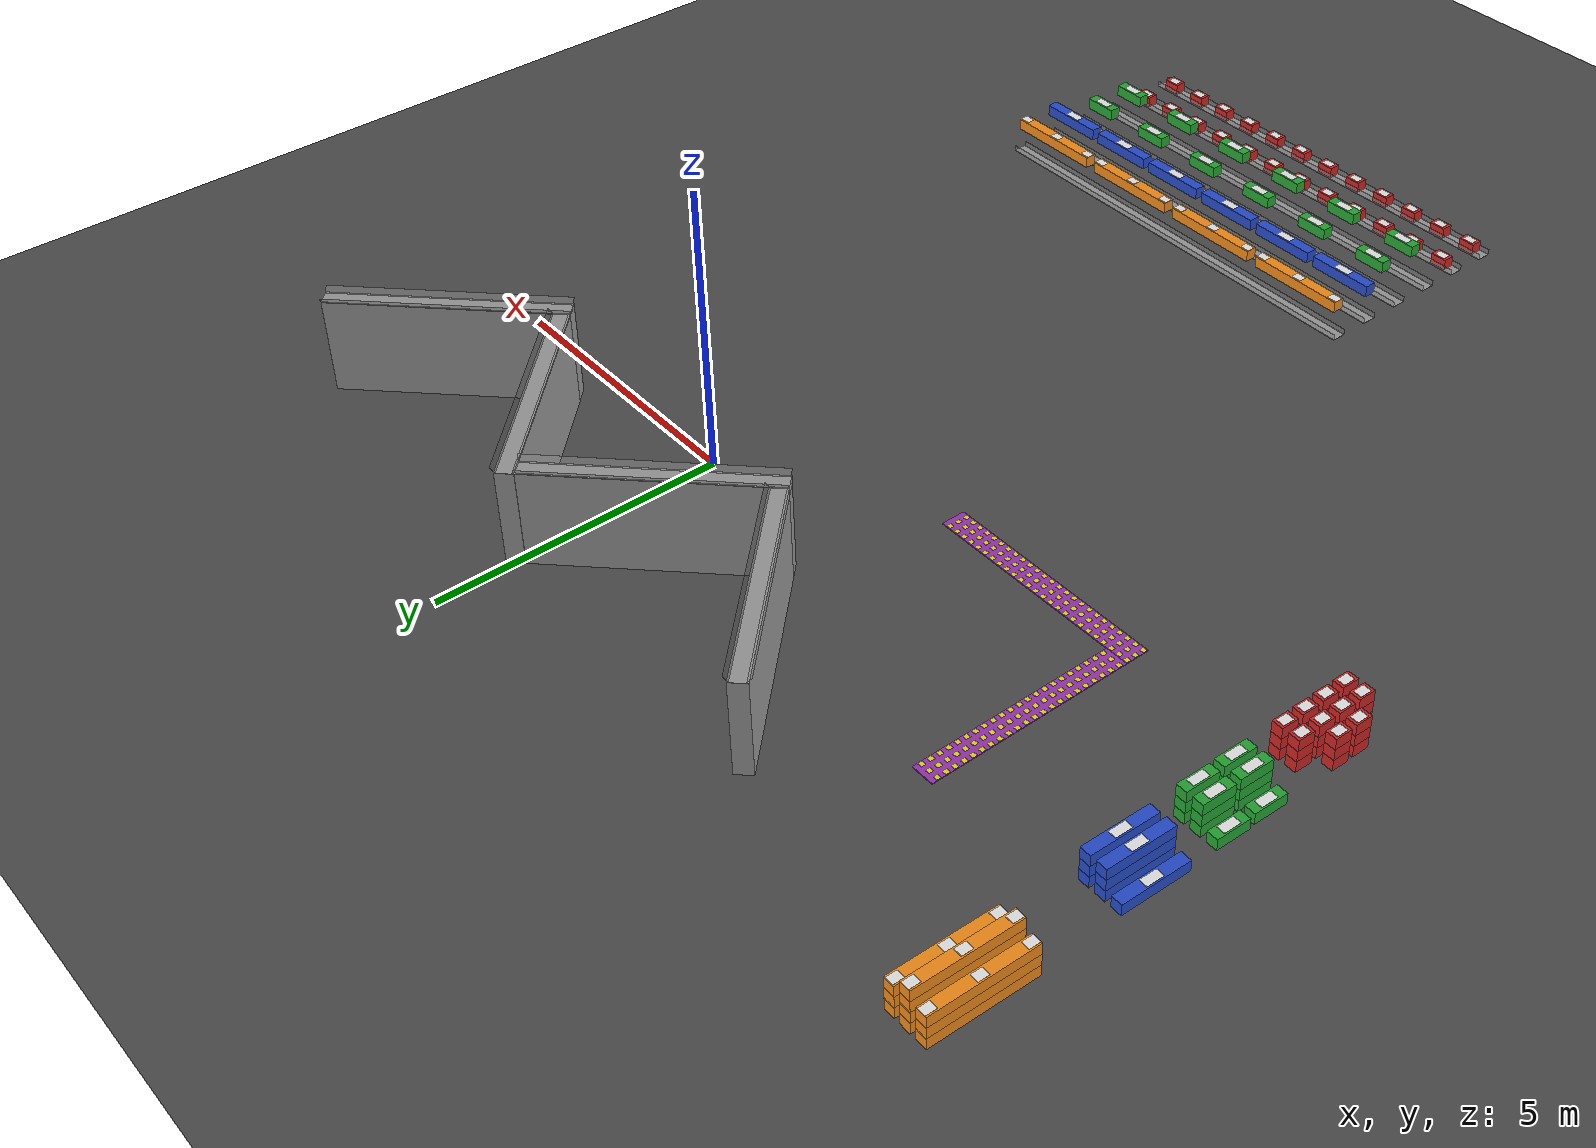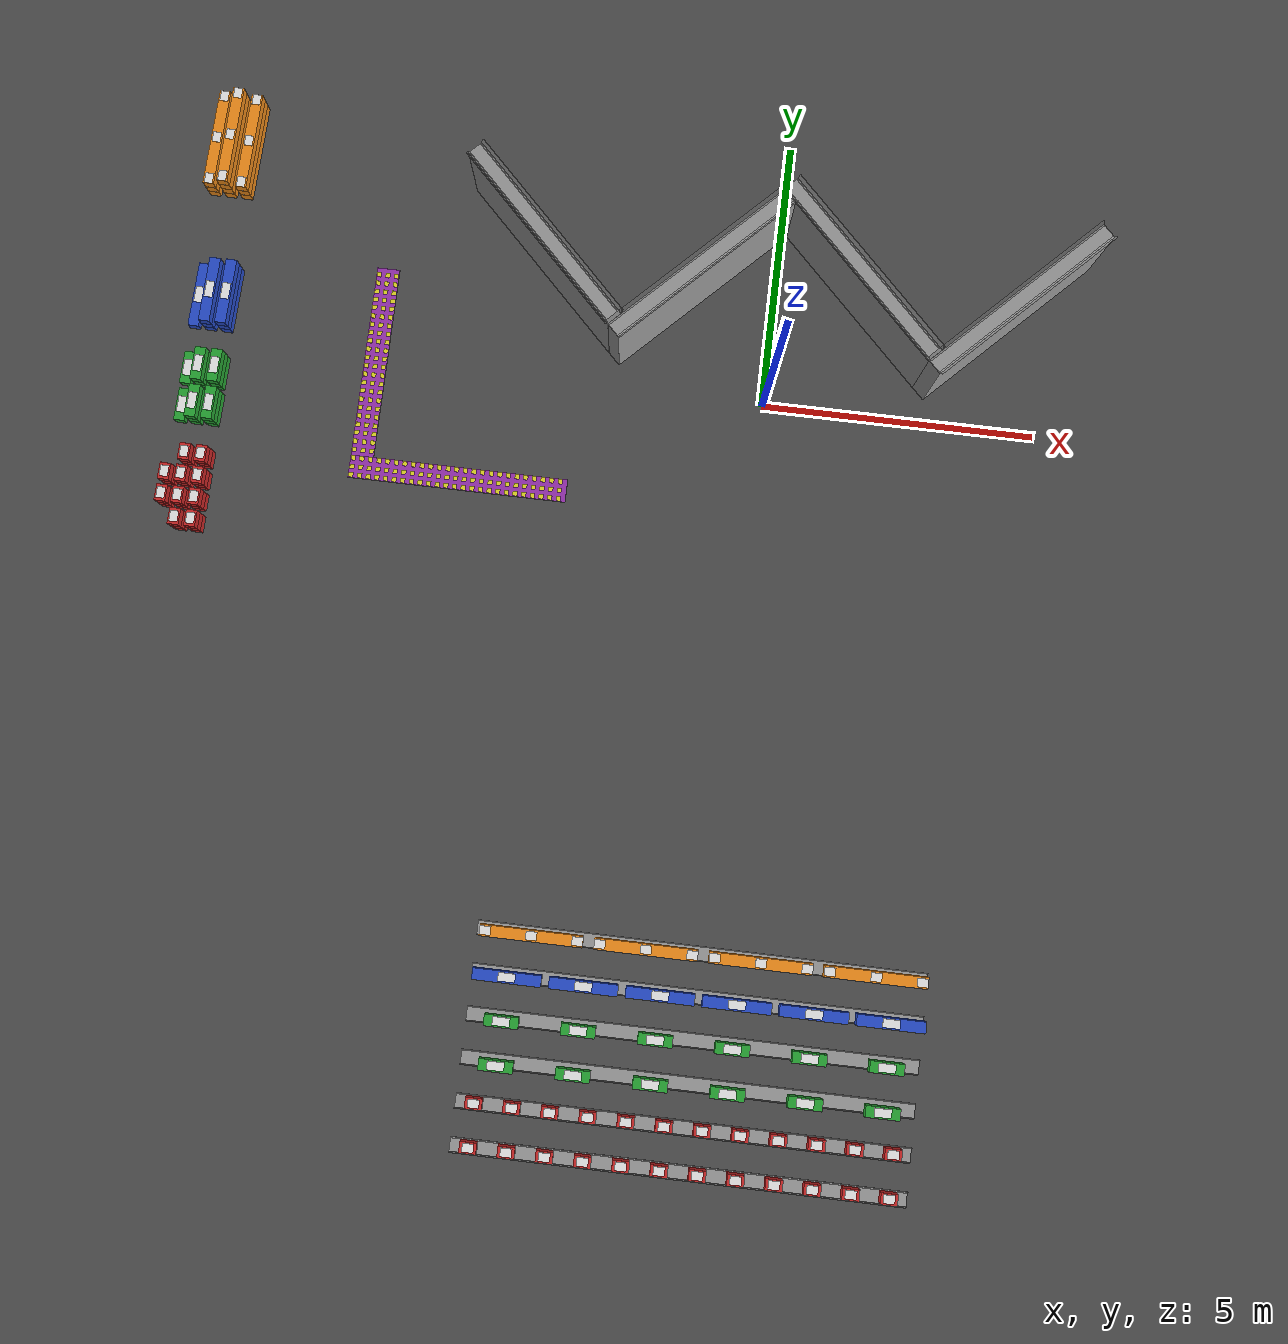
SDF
<?xml version="1.0" ?>
<?xml-model href="http://sdformat.org/schemas/root.xsd" schematypens="http://www.w3.org/2001/XMLSchema"?>
<sdf version="1.5">
  <world name="default">

    <plugin name="mrs_gazebo_static_transform_republisher_plugin" filename="libMRSGazeboStaticTransformRepublisher.so"/>
	<plugin name="mrs_gazebo_link_attacher_plugin" filename="libMRSGazeboLinkAttacherPlugin.so"/>

    <plugin name="mrs_gazebo_rviz_camera_synchronizer" filename="libMRSGazeboRvizCameraSynchronizer.so" >
      <target_frame_id>gazebo_user_camera</target_frame_id>
      <world_origin_frame_id>uav1/gps_origin</world_origin_frame_id>
      <frame_to_follow>uav1::base_link</frame_to_follow>
    </plugin>

    <spherical_coordinates>
      <surface_model>EARTH_WGS84</surface_model>
      <latitude_deg>47.397743</latitude_deg>
      <longitude_deg>8.545594</longitude_deg>
      <elevation>0.0</elevation>
      <heading_deg>0</heading_deg>
    </spherical_coordinates>

    <physics name="default_physics" default="0" type="ode">
      <gravity>0 0 -9.8066</gravity>
      <ode>
        <solver>
          <type>quick</type>
          <iters>50</iters>
          <sor>1.0</sor>
          <use_dynamic_moi_rescaling>0</use_dynamic_moi_rescaling>
        </solver>
        <constraints>
          <cfm>0</cfm>
          <erp>0.2</erp>
          <contact_max_correcting_vel>1000</contact_max_correcting_vel>
          <contact_surface_layer>0.001</contact_surface_layer>
        </constraints>
      </ode>
      <max_step_size>0.004</max_step_size>
      <real_time_factor>1</real_time_factor>
      <real_time_update_rate>250</real_time_update_rate>
      <magnetic_field>6.0e-06 2.3e-05 -4.2e-05</magnetic_field>
    </physics>

    <scene>
      <shadows>false</shadows>
      <sky>
        <clouds/>
      </sky>
    </scene>

    <light type="directional" name="sun">
      <cast_shadows>true</cast_shadows>
      <pose>250 250 600 0 0 0</pose>
      <diffuse>0.8 0.8 0.8 1</diffuse>
      <specular>0.2 0.2 0.2 1</specular>
      <attenuation>
        <range>1000</range>
        <constant>0.9</constant>
        <linear>0.01</linear>
        <quadratic>0.001</quadratic>
      </attenuation>
      <direction>0 0 -1</direction>
    </light>

    <model name="ground_plane">
      <static>true</static>
      <link name="link">
        <collision name="collision">
          <pose>0 0 0 0 0 0</pose>
          <geometry>
            <plane>
              <normal>0 0 1</normal>
              <size>250 250</size>
            </plane>
          </geometry>
          <surface>
            <bounce/>
            <friction>
              <ode>
                <mu>Inf</mu>
                <mu2>1</mu2>
              </ode>
            </friction>
          </surface>
        </collision>
        <visual name="grass">
          <pose>0 0 0 0 0 0</pose>
          <cast_shadows>false</cast_shadows>
          <geometry>
            <plane>
              <normal>0 0 1</normal>
              <size>50 60</size>
            </plane>
          </geometry>
          <material>
            <script>
              <uri>model://asphalt_plane/materials/scripts</uri>
              <uri>model://asphalt_plane/materials/textures</uri>
              <name>vrc/asphalt</name>
            </script>
          </material>
        </visual>
      </link>
    </model>

    <include>
        <name>uav_assembly_wall_1</name>
        <pose>-1.41 2.0 0 0 0 0.785</pose>
        <static>true</static>
        <uri>model://mbzirc_uav_assembly_wall</uri>
    </include>

    <include>
        <name>uav_assembly_wall_2</name>
        <pose>1.41 2.2121 0 0 0 -0.785</pose>
        <static>true</static>
        <uri>model://mbzirc_uav_assembly_wall</uri>
    </include>

    <include>
        <name>uav_assembly_wall_3</name>
        <pose>4.242640687 2.0 0 0 0 0.785</pose>
        <static>true</static>
        <uri>model://mbzirc_uav_assembly_wall</uri>
    </include>

    <include>
        <name>uav_assembly_wall_4</name>
        <pose>-4.242640687 2.2121 0 0 0 -0.785</pose>
        <static>true</static>
        <uri>model://mbzirc_uav_assembly_wall</uri>
    </include>

    <include>
        <name>ugv_assembly_wall_1</name>
        <pose>-5.41 -2.0 0 0 0 0.0</pose>
        <static>true</static>
        <uri>model://ugv_pattern</uri>
    </include>

      <include>
        <name>uav_pickup_u_channel_1</name>
        <static>true</static>
        <uri>model://mbzirc_uav_pickup_u_channel</uri>
        <pose>0 -10.0 0 0 0 0</pose>
      </include>

      <include>
        <name>orange_cube_1</name>
        <static>false</static>
        <uri>model://mbzirc_orange_brick</uri>
        <pose>-3.0 -10 0.5 0 0 0</pose>
      </include>

      <include>
        <name>orange_cube_2</name>
        <static>false</static>
        <uri>model://mbzirc_orange_brick</uri>
        <pose>-1.0 -10 0.5 0 0 0</pose>
      </include>

      <include>
        <name>orange_cube_3</name>
        <static>false</static>
        <uri>model://mbzirc_orange_brick</uri>
        <pose>1.0 -10 0.5 0 0 0</pose>
      </include>

      <include>
        <name>orange_cube_4</name>
        <static>false</static>
        <uri>model://mbzirc_orange_brick</uri>
        <pose>3.0 -10 0.5 0 0 0</pose>
      </include>

      <include>
        <name>uav_pickup_u_channel_2</name>
        <static>true</static>
        <uri>model://mbzirc_uav_pickup_u_channel</uri>
        <pose>0 -10.75 0 0 0 0</pose>
      </include>

      <include>
        <name>blue_cube_1</name>
        <static>false</static>
        <uri>model://mbzirc_blue_brick</uri>
        <pose>-3.3333 -10.75 0.5 0 0 0</pose>
      </include>

      <include>
        <name>blue_cube_2</name>
        <static>false</static>
        <uri>model://mbzirc_blue_brick</uri>
        <pose>-1.9999 -10.75 0.5 0 0 0</pose>
      </include>

      <include>
        <name>blue_cube_3</name>
        <static>false</static>
        <uri>model://mbzirc_blue_brick</uri>
        <pose>-0.6666 -10.75 0.5 0 0 0</pose>
      </include>

      <include>
        <name>blue_cube_4</name>
        <static>false</static>
        <uri>model://mbzirc_blue_brick</uri>
        <pose>0.666 -10.75 0.5 0 0 0</pose>
      </include>

      <include>
        <name>blue_cube_5</name>
        <static>false</static>
        <uri>model://mbzirc_blue_brick</uri>
        <pose>1.9999 -10.75 0.5 0 0 0</pose>
      </include>

      <include>
        <name>blue_cube_6</name>
        <static>false</static>
        <uri>model://mbzirc_blue_brick</uri>
        <pose>3.3333 -10.75 0.5 0 0 0</pose>
      </include>

      <include>
        <name>uav_pickup_u_channel_3</name>
        <static>true</static>
        <uri>model://mbzirc_uav_pickup_u_channel</uri>
        <pose>0 -11.50 0 0 0 0</pose>
      </include>

      <include>
        <name>green_cube_1</name>
        <static>false</static>
        <uri>model://mbzirc_green_brick</uri>
        <pose>-3.3333 -11.5 0.5 0 0 0</pose>
      </include>

      <include>
        <name>green_cube_2</name>
        <static>false</static>
        <uri>model://mbzirc_green_brick</uri>
        <pose>-2.0000 -11.5 0.5 0 0 0</pose>
      </include>

      <include>
        <name>green_cube_3</name>
        <static>false</static>
        <uri>model://mbzirc_green_brick</uri>
        <pose>-0.6666 -11.5 0.5 0 0 0</pose>
      </include>

      <include>
        <name>green_cube_4</name>
        <static>false</static>
        <uri>model://mbzirc_green_brick</uri>
        <pose>0.6666 -11.5 0.5 0 0 0</pose>
      </include>

      <include>
        <name>green_cube_5</name>
        <static>false</static>
        <uri>model://mbzirc_green_brick</uri>
        <pose>2.0000 -11.5 0.5 0 0 0</pose>
      </include>

      <include>
        <name>green_cube_6</name>
        <static>false</static>
        <uri>model://mbzirc_green_brick</uri>
        <pose>3.3333 -11.5 0.5 0 0 0</pose>
      </include>

      <include>
        <name>uav_pickup_u_channel_4</name>
        <static>true</static>
        <uri>model://mbzirc_uav_pickup_u_channel</uri>
        <pose>0 -12.25 0 0 0 0</pose>
      </include>

      <include>
        <name>green_cube_7</name>
        <static>false</static>
        <uri>model://mbzirc_green_brick</uri>
        <pose>-3.3333 -12.25 0.5 0 0 0</pose>
      </include>

      <include>
        <name>green_cube_8</name>
        <static>false</static>
        <uri>model://mbzirc_green_brick</uri>
        <pose>-2.0000 -12.25 0.5 0 0 0</pose>
      </include>

      <include>
        <name>green_cube_9</name>
        <static>false</static>
        <uri>model://mbzirc_green_brick</uri>
        <pose>-0.6666 -12.25 0.5 0 0 0</pose>
      </include>

      <include>
        <name>green_cube_10</name>
        <static>false</static>
        <uri>model://mbzirc_green_brick</uri>
        <pose>0.6666 -12.25 0.5 0 0 0</pose>
      </include>

      <include>
        <name>green_cube_11</name>
        <static>false</static>
        <uri>model://mbzirc_green_brick</uri>
        <pose>2.0000 -12.25 0.5 0 0 0</pose>
      </include>

      <include>
        <name>green_cube_12</name>
        <static>false</static>
        <uri>model://mbzirc_green_brick</uri>
        <pose>3.3333 -12.25 0.5 0 0 0</pose>
      </include>

      <include>
        <name>uav_pickup_u_channel_5</name>
        <static>true</static>
        <uri>model://mbzirc_uav_pickup_u_channel</uri>
        <pose>0 -13.0 0 0 0 0</pose>
      </include>

      <include>
        <name>red_cube_1</name>
        <static>false</static>
        <uri>model://mbzirc_red_brick</uri>
        <pose>-3.6666 -13 0 0 0 0</pose>
      </include>

      <include>
        <name>red_cube_2</name>
        <static>false</static>
        <uri>model://mbzirc_red_brick</uri>
        <pose>-2.9999 -13 0 0 0 0</pose>
      </include>

      <include>
        <name>red_cube_3</name>
        <static>false</static>
        <uri>model://mbzirc_red_brick</uri>
        <pose>-2.3333 -13 0 0 0 0</pose>
      </include>

      <include>
        <name>red_cube_4</name>
        <static>false</static>
        <uri>model://mbzirc_red_brick</uri>
        <pose>-1.6666 -13 0 0 0 0</pose>
      </include>

      <include>
        <name>red_cube_5</name>
        <static>false</static>
        <uri>model://mbzirc_red_brick</uri>
        <pose>-0.9999 -13 0 0 0 0</pose>
      </include>

      <include>
        <name>red_cube_6</name>
        <static>false</static>
        <uri>model://mbzirc_red_brick</uri>
        <pose>-0.3333 -13 0 0 0 0</pose>
      </include>

      <include>
        <name>red_cube_7</name>
        <static>false</static>
        <uri>model://mbzirc_red_brick</uri>
        <pose>0.3333 -13 0 0 0 0</pose>
      </include>

      <include>
        <name>red_cube_8</name>
        <static>false</static>
        <uri>model://mbzirc_red_brick</uri>
        <pose>0.9999 -13 0 0 0 0</pose>
      </include>

      <include>
        <name>red_cube_9</name>
        <static>false</static>
        <uri>model://mbzirc_red_brick</uri>
        <pose>1.6666 -13 0 0 0 0</pose>
      </include>

      <include>
        <name>red_cube_10</name>
        <static>false</static>
        <uri>model://mbzirc_red_brick</uri>
        <pose>2.3333 -13 0 0 0 0</pose>
      </include>

      <include>
        <name>red_cube_11</name>
        <static>false</static>
        <uri>model://mbzirc_red_brick</uri>
        <pose>2.9999 -13 0 0 0 0</pose>
      </include>

      <include>
        <name>red_cube_12</name>
        <static>false</static>
        <uri>model://mbzirc_red_brick</uri>
        <pose>3.6666 -13 0 0 0 0</pose>
      </include>

      <include>
        <name>uav_pickup_u_channel_6</name>
        <static>true</static>
        <uri>model://mbzirc_uav_pickup_u_channel</uri>
        <pose>0 -13.75 0 0 0 0</pose>
      </include>

      <include>
        <name>red_cube_13</name>
        <static>false</static>
        <uri>model://mbzirc_red_brick</uri>
        <pose>-3.6666 -13.75 0 0 0 0</pose>
      </include>

      <include>
        <name>red_cube_14</name>
        <static>false</static>
        <uri>model://mbzirc_red_brick</uri>
        <pose>-2.9999 -13.75 0 0 0 0</pose>
      </include>

      <include>
        <name>red_cube_15</name>
        <static>false</static>
        <uri>model://mbzirc_red_brick</uri>
        <pose>-2.3333 -13.75 0 0 0 0</pose>
      </include>

      <include>
        <name>red_cube_16</name>
        <static>false</static>
        <uri>model://mbzirc_red_brick</uri>
        <pose>-1.6666 -13.75 0 0 0 0</pose>
      </include>

      <include>
        <name>red_cube_17</name>
        <static>false</static>
        <uri>model://mbzirc_red_brick</uri>
        <pose>-0.9999 -13.75 0 0 0 0</pose>
      </include>

      <include>
        <name>red_cube_18</name>
        <static>false</static>
        <uri>model://mbzirc_red_brick</uri>
        <pose>-0.3333 -13.75 0 0 0 0</pose>
      </include>

      <include>
        <name>red_cube_19</name>
        <static>false</static>
        <uri>model://mbzirc_red_brick</uri>
        <pose>0.3333 -13.75 0 0 0 0</pose>
      </include>

      <include>
        <name>red_cube_20</name>
        <static>false</static>
        <uri>model://mbzirc_red_brick</uri>
        <pose>0.9999 -13.75 0 0 0 0</pose>
      </include>

      <include>
        <name>red_cube_21</name>
        <static>false</static>
        <uri>model://mbzirc_red_brick</uri>
        <pose>1.6666 -13.75 0 0 0 0</pose>
      </include>

      <include>
        <name>red_cube_22</name>
        <static>false</static>
        <uri>model://mbzirc_red_brick</uri>
        <pose>2.3333 -13.75 0 0 0 0</pose>
      </include>

      <include>
        <name>red_cube_23</name>
        <static>false</static>
        <uri>model://mbzirc_red_brick</uri>
        <pose>2.9999 -13.75 0 0 0 0</pose>
      </include>

      <include>
        <name>red_cube_24</name>
        <static>false</static>
        <uri>model://mbzirc_red_brick</uri>
        <pose>3.6666 -13.75 0 0 0 0</pose>
      </include>

	<!-- gorund robot red bricks begin -->

	  <!-- back row begin -->
	  <include>
        <name>red_cube_25</name>
        <static>true</static>
        <uri>model://mbzirc_red_brick</uri>
        <pose>-10 -3.4 0 0 0 1.54</pose>
      </include>
      <include>
        <name>red_cube_26</name>
        <static>true</static>
        <uri>model://mbzirc_red_brick</uri>
        <pose>-10 -3.4 0.2 0 0 1.54</pose>
      </include>
      <include>
        <name>red_cube_27</name>
        <static>true</static>
        <uri>model://mbzirc_red_brick</uri>
        <pose>-10 -3.4 0.4 0 0 1.54</pose>
      </include>

       <include>
        <name>red_cube_28</name>
        <static>true</static>
        <uri>model://mbzirc_red_brick</uri>
        <pose>-10 -3.0 0 0 0 1.54</pose>
      </include>
      <include>
        <name>red_cube_29</name>
        <static>true</static>
        <uri>model://mbzirc_red_brick</uri>
        <pose>-10 -3.0 0.2 0 0 1.54</pose>
      </include>
      <include>
        <name>red_cube_30</name>
        <static>true</static>
        <uri>model://mbzirc_red_brick</uri>
        <pose>-10 -3.0 0.4 0 0 1.54</pose>
      </include>

      <include>
        <name>red_cube_31</name>
        <static>true</static>
        <uri>model://mbzirc_red_brick</uri>
        <pose>-10 -2.6 0 0 0 1.54</pose>
      </include>
      <include>
        <name>red_cube_32</name>
        <static>true</static>
        <uri>model://mbzirc_red_brick</uri>
        <pose>-10 -2.6 0.2 0 0 1.54</pose>
      </include>
      <include>
        <name>red_cube_33</name>
        <static>true</static>
        <uri>model://mbzirc_red_brick</uri>
        <pose>-10 -2.6 0.4 0 0 1.54</pose>
      </include>

     <include>
        <name>red_cube_34</name>
        <static>true</static>
        <uri>model://mbzirc_red_brick</uri>
        <pose>-10 -2.2 0 0 0 1.54</pose>
      </include>
      <include>
        <name>red_cube_35</name>
        <static>true</static>
        <uri>model://mbzirc_red_brick</uri>
        <pose>-10 -2.2 0.2 0 0 1.54</pose>
      </include>
      <include>
        <name>red_cube_36</name>
        <static>true</static>
        <uri>model://mbzirc_red_brick</uri>
        <pose>-10 -2.2 0.4 0 0 1.54</pose>
      </include>

    <!-- back row end -->

    <!-- middle row begin -->
	  <include>
        <name>red_cube_37</name>
        <static>true</static>
        <uri>model://mbzirc_red_brick</uri>
        <pose>-10.3 -3.4 0 0 0 1.54</pose>
      </include>
      <include>
        <name>red_cube_38</name>
        <static>true</static>
        <uri>model://mbzirc_red_brick</uri>
        <pose>-10.3 -3.4 0.2 0 0 1.54</pose>
      </include>
      <include>
        <name>red_cube_39</name>
        <static>true</static>
        <uri>model://mbzirc_red_brick</uri>
        <pose>-10.3 -3.4 0.4 0 0 1.54</pose>
      </include>

       <include>
        <name>red_cube_40</name>
        <static>true</static>
        <uri>model://mbzirc_red_brick</uri>
        <pose>-10.3 -3.0 0 0 0 1.54</pose>
      </include>
      <include>
        <name>red_cube_41</name>
        <static>true</static>
        <uri>model://mbzirc_red_brick</uri>
        <pose>-10.3 -3.0 0.2 0 0 1.54</pose>
      </include>
      <include>
        <name>red_cube_42</name>
        <static>true</static>
        <uri>model://mbzirc_red_brick</uri>
        <pose>-10.3 -3.0 0.4 0 0 1.54</pose>
      </include>

      <include>
        <name>red_cube_43</name>
        <static>true</static>
        <uri>model://mbzirc_red_brick</uri>
        <pose>-10.3 -2.6 0 0 0 1.54</pose>
      </include>
      <include>
        <name>red_cube_44</name>
        <static>true</static>
        <uri>model://mbzirc_red_brick</uri>
        <pose>-10.3 -2.6 0.2 0 0 1.54</pose>
      </include>
      <include>
        <name>red_cube_45</name>
        <static>true</static>
        <uri>model://mbzirc_red_brick</uri>
        <pose>-10.3 -2.6 0.4 0 0 1.54</pose>
      </include>

     <include>
        <name>red_cube_46</name>
        <static>true</static>
        <uri>model://mbzirc_red_brick</uri>
        <pose>-10.3 -2.2 0 0 0 1.54</pose>
      </include>
      <include>
        <name>red_cube_47</name>
        <static>true</static>
        <uri>model://mbzirc_red_brick</uri>
        <pose>-10.3 -2.2 0.2 0 0 1.54</pose>
      </include>
      <include>
        <name>red_cube_48</name>
        <static>true</static>
        <uri>model://mbzirc_red_brick</uri>
        <pose>-10.3 -2.2 0.4 0 0 1.54</pose>
      </include>

    <!-- middle row end -->

    <!-- front row begin -->

       <include>
        <name>red_cube_49</name>
        <static>true</static>
        <uri>model://mbzirc_red_brick</uri>
        <pose>-10.6 -3.0 0 0 0 1.54</pose>
      </include>
      <include>
        <name>red_cube_50</name>
        <static>true</static>
        <uri>model://mbzirc_red_brick</uri>
        <pose>-10.6 -3.0 0.2 0 0 1.54</pose>
      </include>
      <include>
        <name>red_cube_51</name>
        <static>true</static>
        <uri>model://mbzirc_red_brick</uri>
        <pose>-10.6 -3.0 0.4 0 0 1.54</pose>
      </include>

      <include>
        <name>red_cube_52</name>
        <static>true</static>
        <uri>model://mbzirc_red_brick</uri>
        <pose>-10.6 -2.6 0 0 0 1.54</pose>
      </include>
      <include>
        <name>red_cube_53</name>
        <static>true</static>
        <uri>model://mbzirc_red_brick</uri>
        <pose>-10.6 -2.6 0.2 0 0 1.54</pose>
      </include>
      <include>
        <name>red_cube_54</name>
        <static>true</static>
        <uri>model://mbzirc_red_brick</uri>
        <pose>-10.6 -2.6 0.4 0 0 1.54</pose>
      </include>

    <!-- front row end -->

    <!-- gorund robot red bricks begin -->

    <!-- gorund robot green bricks begin -->

	  <!-- back row begin -->
	  <include>
        <name>green_cube_13</name>
        <static>true</static>
        <uri>model://mbzirc_green_brick</uri>
        <pose>-10 -1.25 0 0 0 1.54</pose>
      </include>
      <include>
        <name>green_cube_14</name>
        <static>true</static>
        <uri>model://mbzirc_green_brick</uri>
        <pose>-10 -1.25 0.2 0 0 1.54</pose>
      </include>
      <include>
        <name>green_cube_15</name>
        <static>true</static>
        <uri>model://mbzirc_green_brick</uri>
        <pose>-10 -1.25 0.4 0 0 1.54</pose>
      </include>

      <include>
        <name>green_cube_16</name>
        <static>true</static>
        <uri>model://mbzirc_green_brick</uri>
        <pose>-10 -0.55 0 0 0 1.54</pose>
      </include>
      <include>
        <name>green_cube_17</name>
        <static>true</static>
        <uri>model://mbzirc_green_brick</uri>
        <pose>-10 -0.55 0.2 0 0 1.54</pose>
      </include>
      <include>
        <name>green_cube_18</name>
        <static>true</static>
        <uri>model://mbzirc_green_brick</uri>
        <pose>-10 -0.55 0.4 0 0 1.54</pose>
      </include>
 	<!-- back row end -->

 	<!-- middle row begin -->
	  <include>
        <name>green_cube_19</name>
        <static>true</static>
        <uri>model://mbzirc_green_brick</uri>
        <pose>-10.3 -1.25 0 0 0 1.54</pose>
      </include>
      <include>
        <name>green_cube_20</name>
        <static>true</static>
        <uri>model://mbzirc_green_brick</uri>
        <pose>-10.3 -1.25 0.2 0 0 1.54</pose>
      </include>
      <include>
        <name>green_cube_21</name>
        <static>true</static>
        <uri>model://mbzirc_green_brick</uri>
        <pose>-10.3 -1.25 0.4 0 0 1.54</pose>
      </include>

      <include>
        <name>green_cube_22</name>
        <static>true</static>
        <uri>model://mbzirc_green_brick</uri>
        <pose>-10.3 -0.55 0 0 0 1.54</pose>
      </include>
      <include>
        <name>green_cube_23</name>
        <static>true</static>
        <uri>model://mbzirc_green_brick</uri>
        <pose>-10.3 -0.55 0.2 0 0 1.54</pose>
      </include>
      <include>
        <name>green_cube_24</name>
        <static>true</static>
        <uri>model://mbzirc_green_brick</uri>
        <pose>-10.3 -0.55 0.4 0 0 1.54</pose>
      </include>

     <!-- middle row end -->

 	 <!-- front row begin -->
	  <include>
        <name>green_cube_25</name>
        <static>true</static>
        <uri>model://mbzirc_green_brick</uri>
        <pose>-10.6 -1.25 0 0 0 1.54</pose>
      </include>

      <include>
        <name>green_cube_27</name>
        <static>true</static>
        <uri>model://mbzirc_green_brick</uri>
        <pose>-10.6 -0.55 0 0 0 1.54</pose>
      </include>

     <!-- front row end -->

    <!-- gorund robot green bricks end -->

    <!-- gorund robot blue bricks begin -->
     <!-- back row begin -->
	 <include>
        <name>blue_cube_7</name>
        <static>true</static>
        <uri>model://mbzirc_blue_brick</uri>
        <pose>-10.0 0.85 0 0 0 1.54</pose>
     </include>
     <include>
        <name>blue_cube_8</name>
        <static>true</static>
        <uri>model://mbzirc_blue_brick</uri>
        <pose>-10.0 0.85 0.2 0 0 1.54</pose>
     </include>
     <include>
        <name>blue_cube_9</name>
        <static>true</static>
        <uri>model://mbzirc_blue_brick</uri>
        <pose>-10.0 0.85 0.4 0 0 1.54</pose>
     </include>
    <!-- back row end -->

     <!-- middle row begin -->
	 <include>
        <name>blue_cube_10</name>
        <static>true</static>
        <uri>model://mbzirc_blue_brick</uri>
        <pose>-10.3 0.85 0 0 0 1.54</pose>
     </include>
     <include>
        <name>blue_cube_11</name>
        <static>true</static>
        <uri>model://mbzirc_blue_brick</uri>
        <pose>-10.3 0.85 0.2 0 0 1.54</pose>
     </include>
     <include>
        <name>blue_cube_12</name>
        <static>true</static>
        <uri>model://mbzirc_blue_brick</uri>
        <pose>-10.3 0.85 0.4 0 0 1.54</pose>
     </include>
    <!-- middle row end -->

    <!-- front row begin -->
     <include>
        <name>blue_cube_13</name>
        <static>true</static>
        <uri>model://mbzirc_blue_brick</uri>
        <pose>-10.6 0.85 0.0 0 0 1.54</pose>
     </include>
    <!-- front row end -->

    <!-- gorund robot blue bricks end -->

    <!-- gorund robot orange bricks begin -->

     <!-- back row begin -->
     <include>
        <name>orange_cube_5</name>
        <static>true</static>
        <uri>model://mbzirc_orange_brick</uri>
        <pose>-10.0 3.75 0.0 0 0 1.54</pose>
      </include>
      <include>
        <name>orange_cube_6</name>
        <static>true</static>
        <uri>model://mbzirc_orange_brick</uri>
        <pose>-10.0 3.75 0.2 0 0 1.54</pose>
      </include>
      <include>
        <name>orange_cube_7</name>
        <static>true</static>
        <uri>model://mbzirc_orange_brick</uri>
        <pose>-10.0 3.75 0.4 0 0 1.54</pose>
      </include>
    <!-- back row end -->

    <!-- middle row begin -->
     <include>
        <name>orange_cube_8</name>
        <static>true</static>
        <uri>model://mbzirc_orange_brick</uri>
        <pose>-10.3 3.75 0.0 0 0 1.54</pose>
      </include>
      <include>
        <name>orange_cube_9</name>
        <static>true</static>
        <uri>model://mbzirc_orange_brick</uri>
        <pose>-10.3 3.75 0.2 0 0 1.54</pose>
      </include>
      <include>
        <name>orange_cube_10</name>
        <static>true</static>
        <uri>model://mbzirc_orange_brick</uri>
        <pose>-10.3 3.75 0.4 0 0 1.54</pose>
      </include>
      <include>
        <name>orange_cube_11</name>
        <static>true</static>
        <uri>model://mbzirc_orange_brick</uri>
        <pose>-10.3 3.75 0.6 0 0 1.54</pose>
      </include>
    <!-- middle row end -->

    <!-- front row begin -->
     <include>
        <name>orange_cube_12</name>
        <static>true</static>
        <uri>model://mbzirc_orange_brick</uri>
        <pose>-10.6 3.75 0.0 0 0 1.54</pose>
      </include>
      <include>
        <name>orange_cube_13</name>
        <static>true</static>
        <uri>model://mbzirc_orange_brick</uri>
        <pose>-10.6 3.75 0.2 0 0 1.54</pose>
      </include>
      <include>
        <name>orange_cube_14</name>
        <static>true</static>
        <uri>model://mbzirc_orange_brick</uri>
        <pose>-10.6 3.75 0.4 0 0 1.54</pose>
      </include>
    <!-- front row end -->

    <!-- gorund robot orange bricks end -->

    <gui>
      <camera name="camera">
        <pose>-23 -35 15 0 0.4 0.89</pose>
      </camera>
    </gui>
  </world>
</sdf>

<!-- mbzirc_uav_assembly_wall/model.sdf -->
<sdf version="1.5">
  <model name="mbzirc_uav_assembly_wall">
    <static>true</static>
    <link name="link">
      <pose>0 0 0.85 0 0 0</pose>

      <collision name="collision_wall">
        <geometry>
          <box>
            <size>4.0 0.3 1.7</size>
          </box>
        </geometry>
      </collision>

      <visual name="visual_wall">
        <cast_shadows>true</cast_shadows>
        <geometry>
          <box>
            <size>4.0 0.3 1.7</size>
          </box>
        </geometry>
        <material>
          <script>
            <uri>model://mbzirc_uav_assembly_wall/materials/scripts</uri>
            <uri>model://mbzirc_uav_assembly_wall/materials/textures</uri>
            <name>vrc/grey_wall</name>
          </script>
        </material>
      </visual>

      <visual name="visual_top_plate">
        <pose>0 00 0.85 0 0 0</pose>
        <geometry>
          <box>
            <size>4.0 0.3 0.005</size>
          </box>
        </geometry>
        <material>
          <script>
            <name>Gazebo/Grey</name>
            <uri>file://media/materials/scripts/gazebo.material</uri>
          </script>
        </material>
      </visual>

      <collision name="collision_front_channel">
        <pose>0 0.158 0.9 -0.643 0 0</pose>
        <geometry>
          <box>
            <size>4.0 0.005 0.125</size>
          </box>
        </geometry>
      </collision>

      <visual name="visual_front_channel">
        <pose>0 0.158 0.9 -0.643 0 0</pose>
        <geometry>
          <box>
            <size>4.0 0.005 0.125</size>
          </box>
        </geometry>
        <material>
          <script>
            <name>Gazebo/GreyTransparent</name>
            <uri>file://media/materials/scripts/gazebo.material</uri>
          </script>
        </material>
      </visual>

      <collision name="collision_back_channel">
        <pose>0 -0.158 0.9 0.643 0 0</pose>
        <geometry>
          <box>
            <size>4.0 0.005 0.125</size>
          </box>
        </geometry>
      </collision>

      <visual name="visual_back_channel">
        <pose>0 -0.158 0.9 0.643 0 0</pose>
        <geometry>
          <box>
            <size>4.0 0.005 0.125</size>
          </box>
        </geometry>
        <material>
          <script>
            <name>Gazebo/GreyTransparent</name>
            <uri>file://media/materials/scripts/gazebo.material</uri>
          </script>
        </material>
      </visual>

    </link>
  </model>
</sdf>

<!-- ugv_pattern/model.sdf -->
<sdf version="1.5">
  <model name="ugv_pattern">
  <static>true</static>

 <!-- Purple L -->
<link name="L">
		  <visual name="visual">
		  <pose>0 0 0.005 0 0 0</pose>
			  <geometry>
		    	<box>
		        <size>4.02 0.42 0.01</size>
		      </box>
		    </geometry>
        <material>
          <script>
            <uri>file://media/materials/scripts/gazebo.material</uri>
            <name>Gazebo/Purple</name>
          </script>
		    </material>
		  </visual>
      <visual name="visual_l">
        <pose>-1.8 2.01 0.005 0 0 0</pose>
			  <geometry>
		    	<box>
		        <size>0.42 3.60 0.01</size>
		      </box>
		    </geometry>
        <material>
          <script>
            <uri>file://media/materials/scripts/gazebo.material</uri>
            <name>Gazebo/Purple</name>
          </script>
		    </material>
		  </visual>
    </link>

    <!--Squares{-->
    <link name="Yellow squares">
      <visual name="visual">
        <pose> -1.80 0 0.001 1.5708 0 0 </pose>
        <geometry>
          <mesh>
            <uri>model://ugv_pattern/meshes/ugv_pattern.stl</uri>
          </mesh>
        </geometry>
        <material>
            <script>
              <uri>file://media/materials/scripts/gazebo.material</uri>
              <name>Gazebo/Yellow</name>
            </script>
        </material>
      </visual>
    </link>

  </model>
</sdf>

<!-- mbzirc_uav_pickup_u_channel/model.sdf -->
<sdf version="1.5">
  <model name="mbzirc_uav_assembly_wall">
    <static>true</static>
    <link name="link">
      <pose>0 0 0 0 0 0</pose>

      <visual name="visual_top_plate">
        <pose>0 0 0.0025 0 0 0</pose>
        <geometry>
          <box>
            <size>8.0 0.25 0.005</size>
          </box>
        </geometry>
        <material>
          <script>
            <name>Gazebo/Grey</name>
            <uri>file://media/materials/scripts/gazebo.material</uri>
          </script>
        </material>
      </visual>

      <collision name="collision_front_channel">
        <pose>0 0.125 0.0525 0 0 0</pose>
        <geometry>
          <box>
            <size>8.0 0.005 0.1</size>
          </box>
        </geometry>
      </collision>

      <visual name="visual_front_channel">
        <pose>0 0.125 0.0525 0 0 0</pose>
        <geometry>
          <box>
            <size>8.0 0.005 0.1</size>
          </box>
        </geometry>
        <material>
          <script>
            <name>Gazebo/GreyTransparent</name>
            <uri>file://media/materials/scripts/gazebo.material</uri>
          </script>
        </material>
      </visual>

      <collision name="collision_back_channel">
        <pose>0 -0.125 0.0525 0 0 0</pose>
        <geometry>
          <box>
            <size>8.0 0.005 0.1</size>
          </box>
        </geometry>
      </collision>

      <visual name="visual_back_channel">
        <pose>0 -0.125 0.0525 0 0 0</pose>
        <geometry>
          <box>
            <size>8.0 0.005 0.1</size>
          </box>
        </geometry>
        <material>
          <script>
            <name>Gazebo/GreyTransparent</name>
            <uri>file://media/materials/scripts/gazebo.material</uri>
          </script>
        </material>
      </visual>

    </link>
  </model>
</sdf>

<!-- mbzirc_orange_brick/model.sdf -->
<sdf version="1.5">
  <model name="mbzirc_orange_brick">
      <static>0</static>
	  <link name="link">
		  <pose>0 0 0.1 0 0 0</pose>
	        <inertial>
	          <mass>1.2</mass>
	          <inertia>
	            <ixx>0.007968</ixx>
	            <ixy>0</ixy>
	            <ixz>0</ixz>
	            <iyy>0.326688</iyy>
	            <iyz>0</iyz>
	            <izz>0.326688</izz>
	          </inertia>
	        </inertial>
		  <visual name="main_box">
			<geometry>
		      <box>
		       	<size>1.8 0.2 0.2</size>
		      </box>
		   	</geometry>
		    <material>
              <script>
                <uri>file://media/materials/scripts/gazebo.material</uri>
                <name>Gazebo/Orange</name>
              </script>
            </material>
          </visual>
          <visual name="white_plate_center">
          	<pose>0 0 0.1 0 0 0</pose>
			<geometry>
		      <box>
		       	<size>0.19 0.15 0.006</size>
		      </box>
		   	</geometry>
		    <material>
              <script>
                <uri>file://media/materials/scripts/gazebo.material</uri>
                <name>Gazebo/White</name>
              </script>
            </material>
          </visual>
          <visual name="white_plate_left">
          	<pose>-0.805 0 0.1 0 0 0</pose>
			<geometry>
		      <box>
		       	<size>0.19 0.15 0.006</size>
		      </box>
		   	</geometry>
		    <material>
              <script>
                <uri>file://media/materials/scripts/gazebo.material</uri>
                <name>Gazebo/White</name>
              </script>
            </material>
          </visual>
          <visual name="white_plate_right">
          	<pose>0.805 0 0.1 0 0 0</pose>
			<geometry>
		      <box>
		       	<size>0.19 0.15 0.006</size>
		      </box>
		   	</geometry>
		    <material>
              <script>
                <uri>file://media/materials/scripts/gazebo.material</uri>
                <name>Gazebo/White</name>
              </script>
            </material>
          </visual>
	      <collision name="collision">
	        <pose>0 0 0 0 0 0</pose>
	        <geometry>
		      <box>
		       	<size>1.8 0.2 0.2</size>
		      </box>
		   	</geometry>
	        <max_contacts>10</max_contacts>
	        <surface>
	            <contact>
	              <ode/>
	            </contact>
	            <bounce/>
	            <friction>
	              <ode/>
	            </friction>
            </surface>
	      </collision>
	      <self_collide>0</self_collide>
          <kinematic>0</kinematic>
          <gravity>1</gravity>
	  </link>
  </model>
</sdf>

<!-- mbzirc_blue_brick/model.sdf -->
<sdf version="1.5">
  <model name="mbzirc_blue_brick">
      <static>0</static>
	  <link name="link">
		  <pose>0 0 0.1 0 0 0</pose>
	      <inertial>
	          <mass>0.381</mass>
	          <inertia>
	            <ixx>0.00252984</ixx>
	            <ixy>0</ixy>
	            <ixz>0</ixz>
	            <iyy>0.04680204</iyy>
	            <iyz>0</iyz>
	            <izz>0.04680204</izz>
	          </inertia>
	      </inertial>
		  <visual name="main_box">
			<geometry>
		      <box>
		       	<size>1.2 0.2 0.2</size>
		      </box>
		   	</geometry>
		    <material>
              <script>
                <uri>file://media/materials/scripts/gazebo.material</uri>
                <name>Gazebo/Blue</name>
              </script>
            </material>
          </visual>
          <visual name="white_plate">
          	<pose>0 0 0.1 0 0 0</pose>
			<geometry>
		      <box>
		       	<size>0.3 0.15 0.006</size>
		      </box>
		   	</geometry>
		    <material>
              <script>
                <uri>file://media/materials/scripts/gazebo.material</uri>
                <name>Gazebo/White</name>
              </script>
            </material>
          </visual>
	      <collision name="collision">
	        <pose>0 0 0 0 0 0</pose>
	        <geometry>
		      <box>
		       	<size>1.2 0.2 0.2</size>
		      </box>
		   	</geometry>
	        <max_contacts>10</max_contacts>
	        <surface>
	            <contact>
	              <ode/>
	            </contact>
	            <bounce/>
	            <friction>
	              <ode/>
	            </friction>
            </surface>
	      </collision>
	      <self_collide>0</self_collide>
          <kinematic>0</kinematic>
          <gravity>1</gravity>
	  </link>
  </model>
</sdf>

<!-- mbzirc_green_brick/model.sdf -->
<sdf version="1.5">
  <model name="mbzirc_green_brick">
      <static>0</static>
	  <link name="link">
		  <pose>0 0 0.1 0 0 0</pose>
		  <inertial>
	          <mass>0.485</mass>
	          <inertia>
	            <ixx>0.003220</ixx>
	            <ixy>0</ixy>
	            <ixz>0</ixz>
	            <iyy>0.016102</iyy>
	            <iyz>0</iyz>
	            <izz>0.016102</izz>
	          </inertia>
          </inertial>
		  <visual name="main_box">
			<geometry>
		      <box>
		       	<size>0.6 0.2 0.2</size>
		      </box>
		   	</geometry>
		    <material>
              <script>
                <uri>file://media/materials/scripts/gazebo.material</uri>
                <name>Gazebo/Green</name>
              </script>
            </material>
          </visual>
          <visual name="white_plate">
          	<pose>0 0 0.1 0 0 0</pose>
			<geometry>
		      <box>
		       	<size>0.3 0.15 0.006</size>
		      </box>
		   	</geometry>
		    <material>
              <script>
                <uri>file://media/materials/scripts/gazebo.material</uri>
                <name>Gazebo/White</name>
              </script>
            </material>
          </visual>
	      <collision name="collision">
	        <pose>0 0 0 0 0 0</pose>
	        <geometry>
		      <box>
		       	<size>0.6 0.2 0.2</size>
		      </box>
		   	</geometry>
	        <max_contacts>10</max_contacts>
	        <surface>
	            <contact>
	              <ode/>
	            </contact>
	            <bounce/>
	            <friction>
	              <ode/>
	            </friction>
            </surface>
	      </collision>
	      <self_collide>0</self_collide>
          <kinematic>0</kinematic>
          <gravity>1</gravity>
	  </link>
  </model>
</sdf>

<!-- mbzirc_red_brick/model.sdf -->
<sdf version="1.5">
  <model name="mbzirc_red_brick">
      <static>0</static>
	  <link name="link">
		  <pose>0 0 0.1 0 0 0</pose>
		  <inertial>
	          <mass>0.7</mass>
	          <inertia>
	            <ixx>0.004648</ixx>
	            <ixy>0</ixy>
	            <ixz>0</ixz>
	            <iyy>0.007553</iyy>
	            <iyz>0</iyz>
	            <izz>0.007553</izz>
	          </inertia>
          </inertial>
		  <visual name="main_box">
			<geometry>
		      <box>
		       	<size>0.3 0.2 0.2</size>
		      </box>
		   	</geometry>
		    <material>
              <script>
                <uri>file://media/materials/scripts/gazebo.material</uri>
                <name>Gazebo/Red</name>
              </script>
            </material>
          </visual>
          <visual name="white_plate">
          	<pose>0 0 0.1 0 0 0</pose>
			<geometry>
		      <box>
		       	<size>0.2 0.15 0.006</size>
		      </box>
		   	</geometry>
		    <material>
              <script>
                <uri>file://media/materials/scripts/gazebo.material</uri>
                <name>Gazebo/White</name>
              </script>
            </material>
          </visual>
	      <collision name="collision">
	        <pose>0 0 0 0 0 0</pose>
	        <geometry>
		      <box>
		       	<size>0.3 0.2 0.2</size>
		      </box>
		   	</geometry>
	        <max_contacts>10</max_contacts>
	        <surface>
	            <contact>
	              <ode/>
	            </contact>
	            <bounce/>
	            <friction>
	              <ode/>
	            </friction>
            </surface>
	      </collision>
	      <self_collide>0</self_collide>
          <kinematic>0</kinematic>
          <gravity>1</gravity>
	  </link>
  </model>
</sdf>
